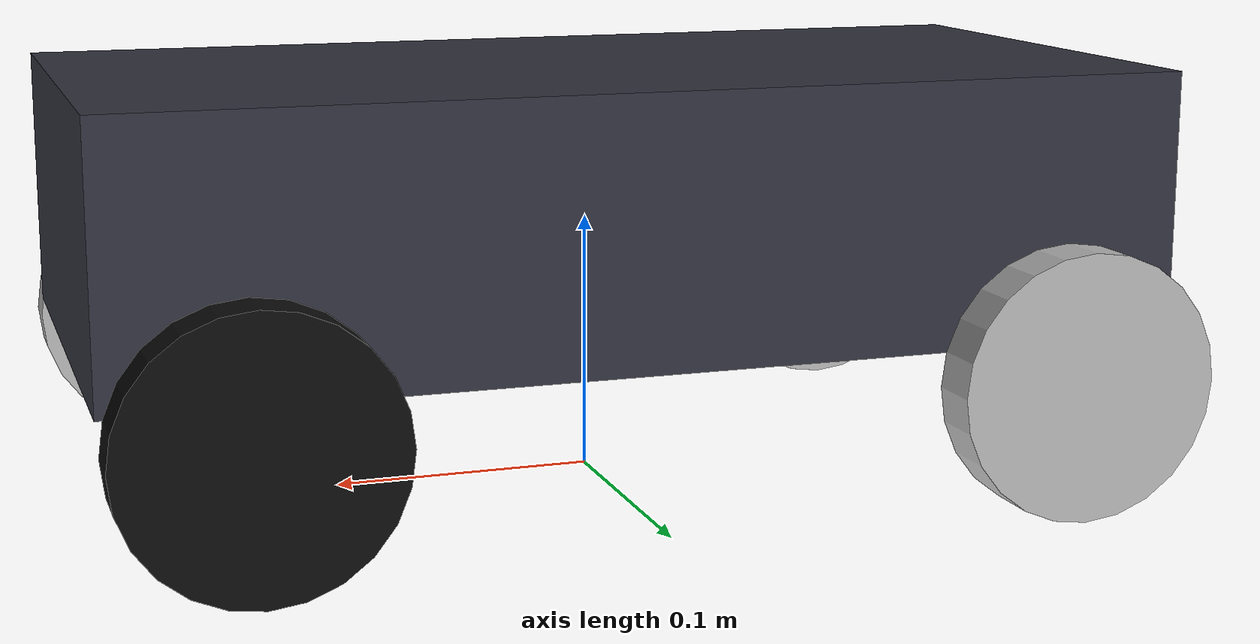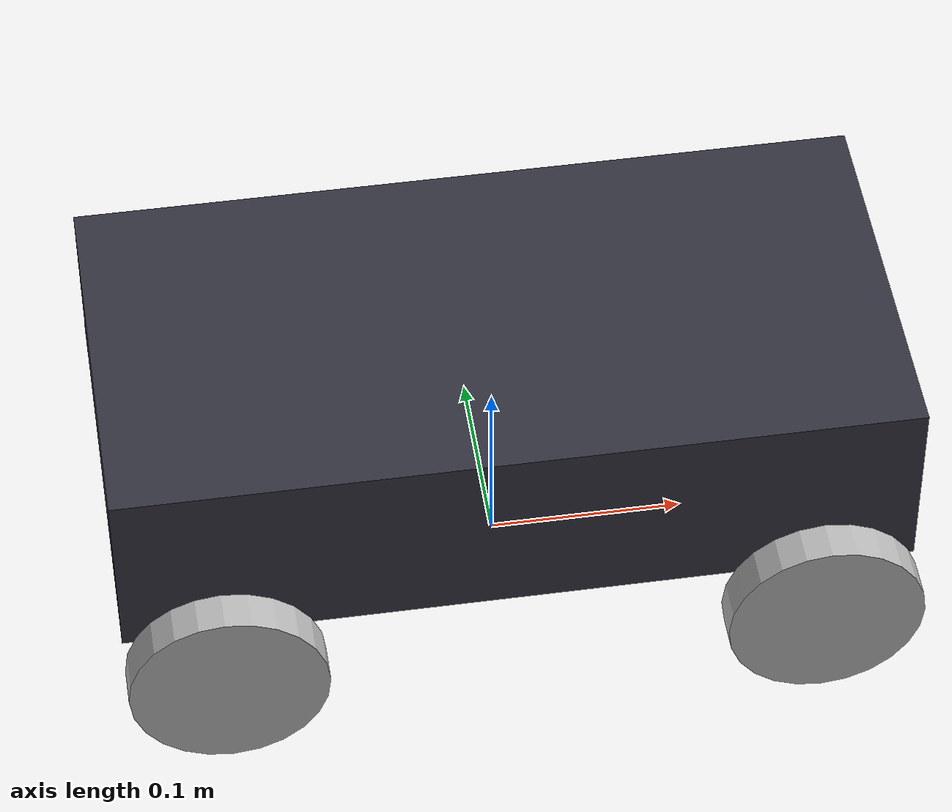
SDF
<?xml version='1.0'?>
<sdf version='1.6'>
  <model name="my_robot">
    <!-- must be dynamic for wheels to spin -->
    <static>false</static>

    <!-- Model origin at ground; we lift the chassis a bit in its own pose -->
    <pose>0 0 0 0 0 0</pose>

    <link name='chassis'>
      <!-- box: 0.4 x 0.2 x 0.1, center z = 0.11 gives ~1 cm clearance above 0.05m-radius wheels -->
      <pose>0 0 0.11 0 0 0</pose>

      <inertial>
        <mass>1.0</mass>
        <!-- Rough box inertia for 0.4 x 0.2 x 0.1 m, m=1 kg -->
        <inertia>
          <ixx>0.00417</ixx>
          <ixy>0.0</ixy>
          <ixz>0.0</ixz>
          <iyy>0.01417</iyy>
          <iyz>0.0</iyz>
          <izz>0.01667</izz>
        </inertia>
      </inertial>

      <collision name='chassis_collision'>
        <geometry>
          <box><size>0.4 0.2 0.1</size></box>
        </geometry>
        <surface>
          <friction>
            <ode><mu>1.0</mu><mu2>1.0</mu2></ode>
          </friction>
        </surface>
      </collision>

      <visual name='chassis_visual'>
        <geometry>
          <box><size>0.4 0.2 0.1</size></box>
        </geometry>
        <material><ambient>0.2 0.2 0.25 1</ambient></material>
      </visual>
    </link>

    <!-- =============== Wheel template (radius=0.05, width=0.02) =============== -->
    <!-- Front-Left (x=+0.15, y=+0.12) -->
    <link name='wheel_fl'>
      <!-- roll 90deg so cylinder axis aligns with Y -->
      <pose>0.15 0.12 0.05 1.5707963 0 0</pose>
      <inertial>
        <mass>0.2</mass>
        <!-- Solid cylinder inertia, axis along Y -->
        <inertia>
          <ixx>0.000132</ixx>
          <ixy>0.0</ixy>
          <ixz>0.0</ixz>
          <iyy>0.00025</iyy>
          <iyz>0.0</iyz>
          <izz>0.000132</izz>
        </inertia>
      </inertial>
      <collision name='col'>
        <geometry><cylinder><radius>0.05</radius><length>0.02</length></cylinder></geometry>
        <surface>
          <friction><ode><mu>1.2</mu><mu2>1.2</mu2></ode></friction>
        </surface>
      </collision>
      <visual name='vis'>
        <geometry><cylinder><radius>0.05</radius><length>0.02</length></cylinder></geometry>
        <material><ambient>0.05 0.05 0.05 1</ambient></material>
      </visual>
    </link>

    <!-- Front-Right -->
    <link name='wheel_fr'>
      <pose>0.15 -0.12 0.05 1.5707963 0 0</pose>
      <inertial><mass>0.2</mass>
        <inertia><ixx>0.000132</ixx><ixy>0</ixy><ixz>0</ixz><iyy>0.00025</iyy><iyz>0</iyz><izz>0.000132</izz></inertia>
      </inertial>
      <collision name='col'><geometry><cylinder><radius>0.05</radius><length>0.02</length></cylinder></geometry>
        <surface><friction><ode><mu>1.2</mu><mu2>1.2</mu2></ode></friction></surface></collision>
      <visual name='vis'><geometry><cylinder><radius>0.05</radius><length>0.02</length></cylinder></geometry></visual>
    </link>

    <!-- Rear-Left -->
    <link name='wheel_rl'>
      <pose>-0.15 0.12 0.05 1.5707963 0 0</pose>
      <inertial><mass>0.2</mass>
        <inertia><ixx>0.000132</ixx><ixy>0</ixy><ixz>0</ixz><iyy>0.00025</iyy><iyz>0</iyz><izz>0.000132</izz></inertia>
      </inertial>
      <collision name='col'><geometry><cylinder><radius>0.05</radius><length>0.02</length></cylinder></geometry>
        <surface><friction><ode><mu>1.2</mu><mu2>1.2</mu2></ode></friction></surface></collision>
      <visual name='vis'><geometry><cylinder><radius>0.05</radius><length>0.02</length></cylinder></geometry></visual>
    </link>

    <!-- Rear-Right -->
    <link name='wheel_rr'>
      <pose>-0.15 -0.12 0.05 1.5707963 0 0</pose>
      <inertial><mass>0.2</mass>
        <inertia><ixx>0.000132</ixx><ixy>0</ixy><ixz>0</ixz><iyy>0.00025</iyy><iyz>0</iyz><izz>0.000132</izz></inertia>
      </inertial>
      <collision name='col'><geometry><cylinder><radius>0.05</radius><length>0.02</length></cylinder></geometry>
        <surface><friction><ode><mu>1.2</mu><mu2>1.2</mu2></ode></friction></surface></collision>
      <visual name='vis'><geometry><cylinder><radius>0.05</radius><length>0.02</length></cylinder></geometry></visual>
    </link>

    <!-- ===================== Joints (revolute about Y) ===================== -->
    <joint name='joint_wheel_fl' type='revolute'>
      <parent>chassis</parent>
      <child>wheel_fl</child>
      <axis>
        <xyz>0 1 0</xyz>
        <use_parent_model_frame>true</use_parent_model_frame>
        <limit><lower>-1e16</lower><upper>1e16</upper></limit>
        <dynamics><damping>0.1</damping></dynamics>
      </axis>
    </joint>

    <joint name='joint_wheel_fr' type='revolute'>
      <parent>chassis</parent>
      <child>wheel_fr</child>
      <axis>
        <xyz>0 1 0</xyz>
        <use_parent_model_frame>true</use_parent_model_frame>
        <limit><lower>-1e16</lower><upper>1e16</upper></limit>
        <dynamics><damping>0.1</damping></dynamics>
      </axis>
    </joint>

    <joint name='joint_wheel_rl' type='revolute'>
      <parent>chassis</parent>
      <child>wheel_rl</child>
      <axis>
        <xyz>0 1 0</xyz>
        <use_parent_model_frame>true</use_parent_model_frame>
        <limit><lower>-1e16</lower><upper>1e16</upper></limit>
        <dynamics><damping>0.1</damping></dynamics>
      </axis>
    </joint>

    <joint name='joint_wheel_rr' type='revolute'>
      <parent>chassis</parent>
      <child>wheel_rr</child>
      <axis>
        <xyz>0 1 0</xyz>
        <use_parent_model_frame>true</use_parent_model_frame>
        <limit><lower>-1e16</lower><upper>1e16</upper></limit>
        <dynamics><damping>0.1</damping></dynamics>
      </axis>
    </joint>
    <!-- 🚗 Gazebo ROS Skid-Steer Drive Plugin for keyboard control -->
    <plugin name="car_skid_steer" filename="libgazebo_ros_skid_steer_drive.so">
      <ros>
        <namespace>/my_robot</namespace>
        <remapping>cmd_vel:=cmd_vel</remapping>
        <remapping>odom:=odom</remapping>
      </ros>

      <update_rate>50</update_rate>

      <!-- Match your joint names -->
      <left_front_joint>joint_wheel_fl</left_front_joint>
      <left_rear_joint>joint_wheel_rl</left_rear_joint>
      <right_front_joint>joint_wheel_fr</right_front_joint>
      <right_rear_joint>joint_wheel_rr</right_rear_joint>

      <!-- Wheel geometry -->
      <wheel_separation>0.24</wheel_separation>     <!-- y distance between left/right -->
      <wheel_diameter>0.10</wheel_diameter>         <!-- 2 * radius (0.05) -->

      <!-- Performance tuning -->
      <max_wheel_torque>5.0</max_wheel_torque>
      <max_speed>2.0</max_speed>
      <command_timeout>1.0</command_timeout>
    </plugin>
  </model>
</sdf>
